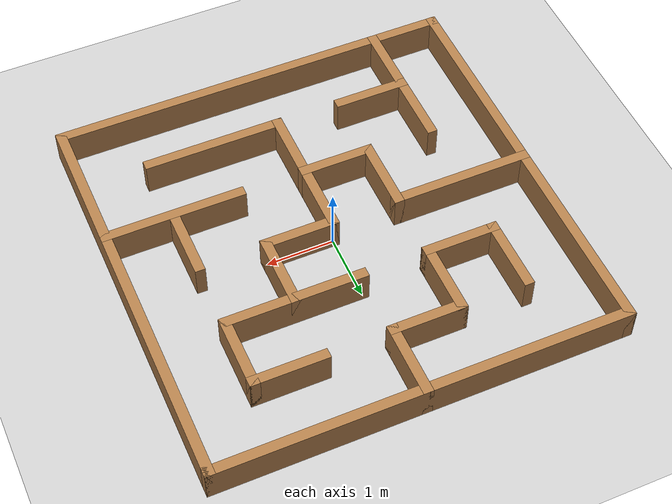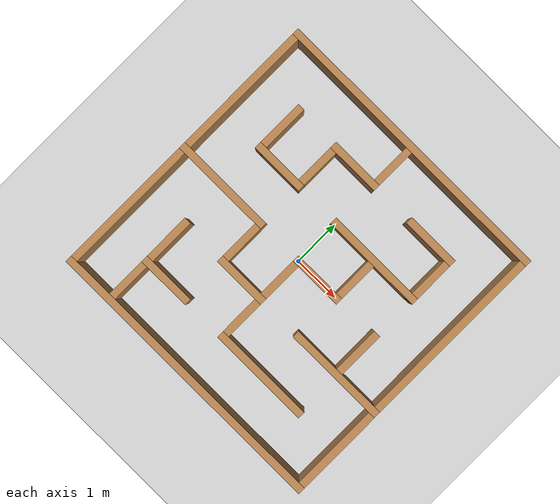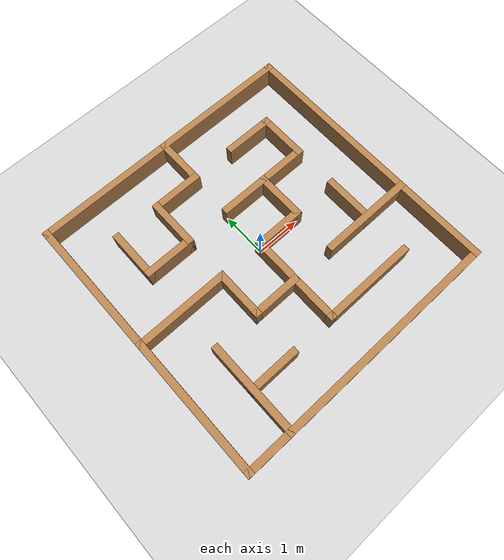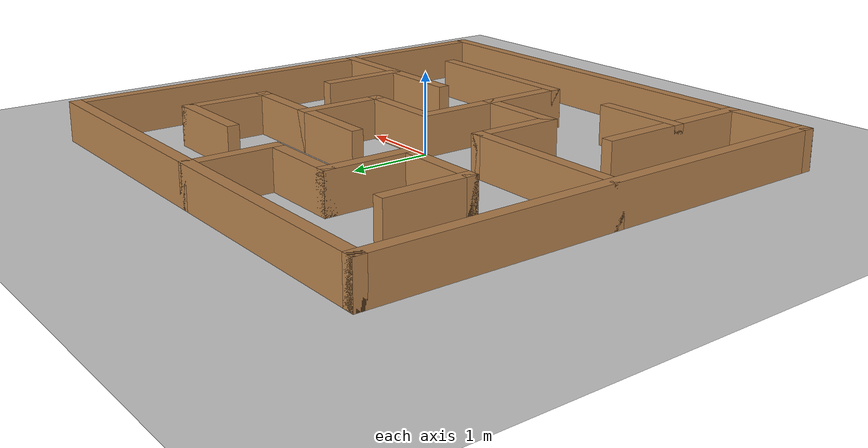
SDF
<sdf version='1.4'>
  <world name='default'>
    <!-- A global light source -->
    <include>
      <uri>model://sun</uri>
    </include>

    <!-- A ground plane -->
    <include>
      <uri>model://ground_plane</uri>
    </include>

    <physics type="ode">
      <real_time_update_rate>1000.0</real_time_update_rate>
      <max_step_size>0.001</max_step_size>
      <real_time_factor>1</real_time_factor>
      <ode>
        <solver>
          <type>quick</type>
          <iters>150</iters>
          <precon_iters>0</precon_iters>
          <sor>1.400000</sor>
          <use_dynamic_moi_rescaling>1</use_dynamic_moi_rescaling>
        </solver>
        <constraints>
          <cfm>0.00001</cfm>
          <erp>0.2</erp>
          <contact_max_correcting_vel>2000.000000</contact_max_correcting_vel>
          <contact_surface_layer>0.01000</contact_surface_layer>
        </constraints>
      </ode>
    </physics>

    <model name='maze'>
      <static>1</static>
      <link name='wall_00'>
        <pose>0.000 -3.000 0.250 0 0 0</pose>
        <collision name='wall_00_collision'>
          <geometry>
            <box>
              <size>6.150 0.150 0.500</size>
            </box>
          </geometry>
          <max_contacts>10</max_contacts>
          <surface>
            <friction>
              <ode/>
            </friction>
            <contact>
              <ode/>
            </contact>
          </surface>
        </collision>
        <visual name='wall_00_visual'>
          <geometry>
            <box>
              <size>6.150 0.150 0.500</size>
            </box>
          </geometry>
          <material>
            <script>
              <uri>file://media/materials/scripts/gazebo.material</uri>
              <name>Gazebo/Wood</name>
            </script>
            <ambient>1 1 1 1</ambient>
          </material>
        </visual>
      </link>
      <link name='wall_01'>
        <pose>-1.500 -2.000 0.250 0 0 0</pose>
        <collision name='wall_01_collision'>
          <geometry>
            <box>
              <size>1.150 0.150 0.500</size>
            </box>
          </geometry>
          <max_contacts>10</max_contacts>
          <surface>
            <friction>
              <ode/>
            </friction>
            <contact>
              <ode/>
            </contact>
          </surface>
        </collision>
        <visual name='wall_01_visual'>
          <geometry>
            <box>
              <size>1.150 0.150 0.500</size>
            </box>
          </geometry>
          <material>
            <script>
              <uri>file://media/materials/scripts/gazebo.material</uri>
              <name>Gazebo/Wood</name>
            </script>
            <ambient>1 1 1 1</ambient>
          </material>
        </visual>
      </link>
      <link name='wall_02'>
        <pose>1.000 -2.000 0.250 0 0 0</pose>
        <collision name='wall_02_collision'>
          <geometry>
            <box>
              <size>2.150 0.150 0.500</size>
            </box>
          </geometry>
          <max_contacts>10</max_contacts>
          <surface>
            <friction>
              <ode/>
            </friction>
            <contact>
              <ode/>
            </contact>
          </surface>
        </collision>
        <visual name='wall_02_visual'>
          <geometry>
            <box>
              <size>2.150 0.150 0.500</size>
            </box>
          </geometry>
          <material>
            <script>
              <uri>file://media/materials/scripts/gazebo.material</uri>
              <name>Gazebo/Wood</name>
            </script>
            <ambient>1 1 1 1</ambient>
          </material>
        </visual>
      </link>
      <link name='wall_03'>
        <pose>-0.500 -1.000 0.250 0 0 0</pose>
        <collision name='wall_03_collision'>
          <geometry>
            <box>
              <size>1.150 0.150 0.500</size>
            </box>
          </geometry>
          <max_contacts>10</max_contacts>
          <surface>
            <friction>
              <ode/>
            </friction>
            <contact>
              <ode/>
            </contact>
          </surface>
        </collision>
        <visual name='wall_03_visual'>
          <geometry>
            <box>
              <size>1.150 0.150 0.500</size>
            </box>
          </geometry>
          <material>
            <script>
              <uri>file://media/materials/scripts/gazebo.material</uri>
              <name>Gazebo/Wood</name>
            </script>
            <ambient>1 1 1 1</ambient>
          </material>
        </visual>
      </link>
      <link name='wall_04'>
        <pose>2.000 -1.000 0.250 0 0 0</pose>
        <collision name='wall_04_collision'>
          <geometry>
            <box>
              <size>2.150 0.150 0.500</size>
            </box>
          </geometry>
          <max_contacts>10</max_contacts>
          <surface>
            <friction>
              <ode/>
            </friction>
            <contact>
              <ode/>
            </contact>
          </surface>
        </collision>
        <visual name='wall_04_visual'>
          <geometry>
            <box>
              <size>2.150 0.150 0.500</size>
            </box>
          </geometry>
          <material>
            <script>
              <uri>file://media/materials/scripts/gazebo.material</uri>
              <name>Gazebo/Wood</name>
            </script>
            <ambient>1 1 1 1</ambient>
          </material>
        </visual>
      </link>
      <link name='wall_05'>
        <pose>-2.000 0.000 0.250 0 0 0</pose>
        <collision name='wall_05_collision'>
          <geometry>
            <box>
              <size>2.150 0.150 0.500</size>
            </box>
          </geometry>
          <max_contacts>10</max_contacts>
          <surface>
            <friction>
              <ode/>
            </friction>
            <contact>
              <ode/>
            </contact>
          </surface>
        </collision>
        <visual name='wall_05_visual'>
          <geometry>
            <box>
              <size>2.150 0.150 0.500</size>
            </box>
          </geometry>
          <material>
            <script>
              <uri>file://media/materials/scripts/gazebo.material</uri>
              <name>Gazebo/Wood</name>
            </script>
            <ambient>1 1 1 1</ambient>
          </material>
        </visual>
      </link>
      <link name='wall_06'>
        <pose>0.500 0.000 0.250 0 0 0</pose>
        <collision name='wall_06_collision'>
          <geometry>
            <box>
              <size>1.150 0.150 0.500</size>
            </box>
          </geometry>
          <max_contacts>10</max_contacts>
          <surface>
            <friction>
              <ode/>
            </friction>
            <contact>
              <ode/>
            </contact>
          </surface>
        </collision>
        <visual name='wall_06_visual'>
          <geometry>
            <box>
              <size>1.150 0.150 0.500</size>
            </box>
          </geometry>
          <material>
            <script>
              <uri>file://media/materials/scripts/gazebo.material</uri>
              <name>Gazebo/Wood</name>
            </script>
            <ambient>1 1 1 1</ambient>
          </material>
        </visual>
      </link>
      <link name='wall_07'>
        <pose>-1.500 1.000 0.250 0 0 0</pose>
        <collision name='wall_07_collision'>
          <geometry>
            <box>
              <size>1.150 0.150 0.500</size>
            </box>
          </geometry>
          <max_contacts>10</max_contacts>
          <surface>
            <friction>
              <ode/>
            </friction>
            <contact>
              <ode/>
            </contact>
          </surface>
        </collision>
        <visual name='wall_07_visual'>
          <geometry>
            <box>
              <size>1.150 0.150 0.500</size>
            </box>
          </geometry>
          <material>
            <script>
              <uri>file://media/materials/scripts/gazebo.material</uri>
              <name>Gazebo/Wood</name>
            </script>
            <ambient>1 1 1 1</ambient>
          </material>
        </visual>
      </link>
      <link name='wall_08'>
        <pose>1.000 1.000 0.250 0 0 0</pose>
        <collision name='wall_08_collision'>
          <geometry>
            <box>
              <size>2.150 0.150 0.500</size>
            </box>
          </geometry>
          <max_contacts>10</max_contacts>
          <surface>
            <friction>
              <ode/>
            </friction>
            <contact>
              <ode/>
            </contact>
          </surface>
        </collision>
        <visual name='wall_08_visual'>
          <geometry>
            <box>
              <size>2.150 0.150 0.500</size>
            </box>
          </geometry>
          <material>
            <script>
              <uri>file://media/materials/scripts/gazebo.material</uri>
              <name>Gazebo/Wood</name>
            </script>
            <ambient>1 1 1 1</ambient>
          </material>
        </visual>
      </link>
      <link name='wall_09'>
        <pose>-0.500 2.000 0.250 0 0 0</pose>
        <collision name='wall_09_collision'>
          <geometry>
            <box>
              <size>1.150 0.150 0.500</size>
            </box>
          </geometry>
          <max_contacts>10</max_contacts>
          <surface>
            <friction>
              <ode/>
            </friction>
            <contact>
              <ode/>
            </contact>
          </surface>
        </collision>
        <visual name='wall_09_visual'>
          <geometry>
            <box>
              <size>1.150 0.150 0.500</size>
            </box>
          </geometry>
          <material>
            <script>
              <uri>file://media/materials/scripts/gazebo.material</uri>
              <name>Gazebo/Wood</name>
            </script>
            <ambient>1 1 1 1</ambient>
          </material>
        </visual>
      </link>
      <link name='wall_10'>
        <pose>1.500 2.000 0.250 0 0 0</pose>
        <collision name='wall_10_collision'>
          <geometry>
            <box>
              <size>1.150 0.150 0.500</size>
            </box>
          </geometry>
          <max_contacts>10</max_contacts>
          <surface>
            <friction>
              <ode/>
            </friction>
            <contact>
              <ode/>
            </contact>
          </surface>
        </collision>
        <visual name='wall_10_visual'>
          <geometry>
            <box>
              <size>1.150 0.150 0.500</size>
            </box>
          </geometry>
          <material>
            <script>
              <uri>file://media/materials/scripts/gazebo.material</uri>
              <name>Gazebo/Wood</name>
            </script>
            <ambient>1 1 1 1</ambient>
          </material>
        </visual>
      </link>
      <link name='wall_11'>
        <pose>0.000 3.000 0.250 0 0 0</pose>
        <collision name='wall_11_collision'>
          <geometry>
            <box>
              <size>6.150 0.150 0.500</size>
            </box>
          </geometry>
          <max_contacts>10</max_contacts>
          <surface>
            <friction>
              <ode/>
            </friction>
            <contact>
              <ode/>
            </contact>
          </surface>
        </collision>
        <visual name='wall_11_visual'>
          <geometry>
            <box>
              <size>6.150 0.150 0.500</size>
            </box>
          </geometry>
          <material>
            <script>
              <uri>file://media/materials/scripts/gazebo.material</uri>
              <name>Gazebo/Wood</name>
            </script>
            <ambient>1 1 1 1</ambient>
          </material>
        </visual>
      </link>
      <link name='wall_12'>
        <pose>-3.000 0.000 0.250 0 0 0</pose>
        <collision name='wall_12_collision'>
          <geometry>
            <box>
              <size>0.150 6.150 0.500</size>
            </box>
          </geometry>
          <max_contacts>10</max_contacts>
          <surface>
            <friction>
              <ode/>
            </friction>
            <contact>
              <ode/>
            </contact>
          </surface>
        </collision>
        <visual name='wall_12_visual'>
          <geometry>
            <box>
              <size>0.150 6.150 0.500</size>
            </box>
          </geometry>
          <material>
            <script>
              <uri>file://media/materials/scripts/gazebo.material</uri>
              <name>Gazebo/Wood</name>
            </script>
            <ambient>1 1 1 1</ambient>
          </material>
        </visual>
      </link>
      <link name='wall_13'>
        <pose>-2.000 -2.000 0.250 0 0 0</pose>
        <collision name='wall_13_collision'>
          <geometry>
            <box>
              <size>0.150 2.150 0.500</size>
            </box>
          </geometry>
          <max_contacts>10</max_contacts>
          <surface>
            <friction>
              <ode/>
            </friction>
            <contact>
              <ode/>
            </contact>
          </surface>
        </collision>
        <visual name='wall_13_visual'>
          <geometry>
            <box>
              <size>0.150 2.150 0.500</size>
            </box>
          </geometry>
          <material>
            <script>
              <uri>file://media/materials/scripts/gazebo.material</uri>
              <name>Gazebo/Wood</name>
            </script>
            <ambient>1 1 1 1</ambient>
          </material>
        </visual>
      </link>
      <link name='wall_14'>
        <pose>-2.000 1.500 0.250 0 0 0</pose>
        <collision name='wall_14_collision'>
          <geometry>
            <box>
              <size>0.150 1.150 0.500</size>
            </box>
          </geometry>
          <max_contacts>10</max_contacts>
          <surface>
            <friction>
              <ode/>
            </friction>
            <contact>
              <ode/>
            </contact>
          </surface>
        </collision>
        <visual name='wall_14_visual'>
          <geometry>
            <box>
              <size>0.150 1.150 0.500</size>
            </box>
          </geometry>
          <material>
            <script>
              <uri>file://media/materials/scripts/gazebo.material</uri>
              <name>Gazebo/Wood</name>
            </script>
            <ambient>1 1 1 1</ambient>
          </material>
        </visual>
      </link>
      <link name='wall_15'>
        <pose>-1.000 -0.500 0.250 0 0 0</pose>
        <collision name='wall_15_collision'>
          <geometry>
            <box>
              <size>0.150 1.150 0.500</size>
            </box>
          </geometry>
          <max_contacts>10</max_contacts>
          <surface>
            <friction>
              <ode/>
            </friction>
            <contact>
              <ode/>
            </contact>
          </surface>
        </collision>
        <visual name='wall_15_visual'>
          <geometry>
            <box>
              <size>0.150 1.150 0.500</size>
            </box>
          </geometry>
          <material>
            <script>
              <uri>file://media/materials/scripts/gazebo.material</uri>
              <name>Gazebo/Wood</name>
            </script>
            <ambient>1 1 1 1</ambient>
          </material>
        </visual>
      </link>
      <link name='wall_16'>
        <pose>-1.000 1.500 0.250 0 0 0</pose>
        <collision name='wall_16_collision'>
          <geometry>
            <box>
              <size>0.150 1.150 0.500</size>
            </box>
          </geometry>
          <max_contacts>10</max_contacts>
          <surface>
            <friction>
              <ode/>
            </friction>
            <contact>
              <ode/>
            </contact>
          </surface>
        </collision>
        <visual name='wall_16_visual'>
          <geometry>
            <box>
              <size>0.150 1.150 0.500</size>
            </box>
          </geometry>
          <material>
            <script>
              <uri>file://media/materials/scripts/gazebo.material</uri>
              <name>Gazebo/Wood</name>
            </script>
            <ambient>1 1 1 1</ambient>
          </material>
        </visual>
      </link>
      <link name='wall_17'>
        <pose>0.000 -1.000 0.250 0 0 0</pose>
        <collision name='wall_17_collision'>
          <geometry>
            <box>
              <size>0.150 2.150 0.500</size>
            </box>
          </geometry>
          <max_contacts>10</max_contacts>
          <surface>
            <friction>
              <ode/>
            </friction>
            <contact>
              <ode/>
            </contact>
          </surface>
        </collision>
        <visual name='wall_17_visual'>
          <geometry>
            <box>
              <size>0.150 2.150 0.500</size>
            </box>
          </geometry>
          <material>
            <script>
              <uri>file://media/materials/scripts/gazebo.material</uri>
              <name>Gazebo/Wood</name>
            </script>
            <ambient>1 1 1 1</ambient>
          </material>
        </visual>
      </link>
      <link name='wall_18'>
        <pose>0.000 2.500 0.250 0 0 0</pose>
        <collision name='wall_18_collision'>
          <geometry>
            <box>
              <size>0.150 1.150 0.500</size>
            </box>
          </geometry>
          <max_contacts>10</max_contacts>
          <surface>
            <friction>
              <ode/>
            </friction>
            <contact>
              <ode/>
            </contact>
          </surface>
        </collision>
        <visual name='wall_18_visual'>
          <geometry>
            <box>
              <size>0.150 1.150 0.500</size>
            </box>
          </geometry>
          <material>
            <script>
              <uri>file://media/materials/scripts/gazebo.material</uri>
              <name>Gazebo/Wood</name>
            </script>
            <ambient>1 1 1 1</ambient>
          </material>
        </visual>
      </link>
      <link name='wall_19'>
        <pose>1.000 0.500 0.250 0 0 0</pose>
        <collision name='wall_19_collision'>
          <geometry>
            <box>
              <size>0.150 1.150 0.500</size>
            </box>
          </geometry>
          <max_contacts>10</max_contacts>
          <surface>
            <friction>
              <ode/>
            </friction>
            <contact>
              <ode/>
            </contact>
          </surface>
        </collision>
        <visual name='wall_19_visual'>
          <geometry>
            <box>
              <size>0.150 1.150 0.500</size>
            </box>
          </geometry>
          <material>
            <script>
              <uri>file://media/materials/scripts/gazebo.material</uri>
              <name>Gazebo/Wood</name>
            </script>
            <ambient>1 1 1 1</ambient>
          </material>
        </visual>
      </link>
      <link name='wall_20'>
        <pose>2.000 -0.500 0.250 0 0 0</pose>
        <collision name='wall_20_collision'>
          <geometry>
            <box>
              <size>0.150 1.150 0.500</size>
            </box>
          </geometry>
          <max_contacts>10</max_contacts>
          <surface>
            <friction>
              <ode/>
            </friction>
            <contact>
              <ode/>
            </contact>
          </surface>
        </collision>
        <visual name='wall_20_visual'>
          <geometry>
            <box>
              <size>0.150 1.150 0.500</size>
            </box>
          </geometry>
          <material>
            <script>
              <uri>file://media/materials/scripts/gazebo.material</uri>
              <name>Gazebo/Wood</name>
            </script>
            <ambient>1 1 1 1</ambient>
          </material>
        </visual>
      </link>
      <link name='wall_21'>
        <pose>2.000 1.500 0.250 0 0 0</pose>
        <collision name='wall_21_collision'>
          <geometry>
            <box>
              <size>0.150 1.150 0.500</size>
            </box>
          </geometry>
          <max_contacts>10</max_contacts>
          <surface>
            <friction>
              <ode/>
            </friction>
            <contact>
              <ode/>
            </contact>
          </surface>
        </collision>
        <visual name='wall_21_visual'>
          <geometry>
            <box>
              <size>0.150 1.150 0.500</size>
            </box>
          </geometry>
          <material>
            <script>
              <uri>file://media/materials/scripts/gazebo.material</uri>
              <name>Gazebo/Wood</name>
            </script>
            <ambient>1 1 1 1</ambient>
          </material>
        </visual>
      </link>
      <link name='wall_22'>
        <pose>3.000 0.000 0.250 0 0 0</pose>
        <collision name='wall_22_collision'>
          <geometry>
            <box>
              <size>0.150 6.150 0.500</size>
            </box>
          </geometry>
          <max_contacts>10</max_contacts>
          <surface>
            <friction>
              <ode/>
            </friction>
            <contact>
              <ode/>
            </contact>
          </surface>
        </collision>
        <visual name='wall_22_visual'>
          <geometry>
            <box>
              <size>0.150 6.150 0.500</size>
            </box>
          </geometry>
          <material>
            <script>
              <uri>file://media/materials/scripts/gazebo.material</uri>
              <name>Gazebo/Wood</name>
            </script>
            <ambient>1 1 1 1</ambient>
          </material>
        </visual>
      </link>
    </model>

    <scene>
      <ambient>0.4 0.4 0.4 1</ambient>
      <background>0.7 0.7 0.7 1</background>
      <shadows>true</shadows>
    </scene>

    <gui fullscreen='0'>
      <camera name='user_camera'>
        <pose>0.0 0.0 9.0 0 1.5708 0</pose>
        <view_controller>orbit</view_controller>
      </camera>
    </gui>
  </world>
</sdf>
